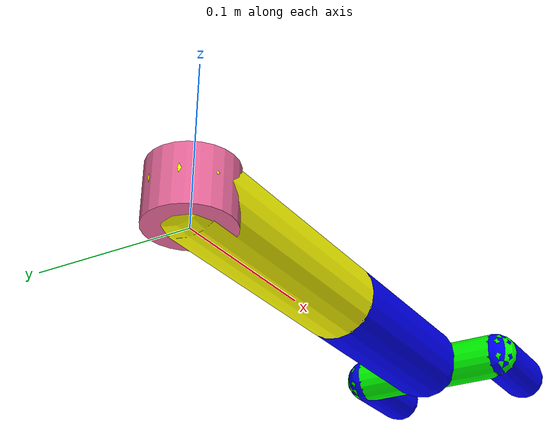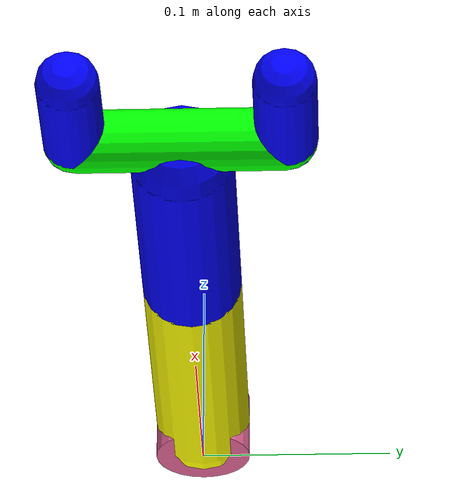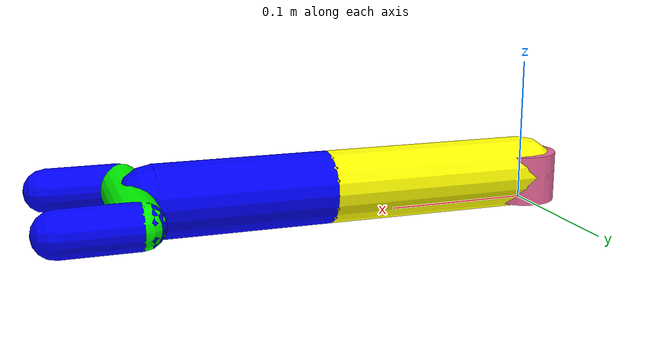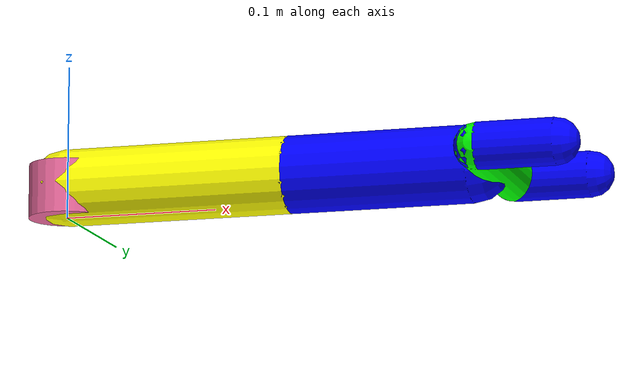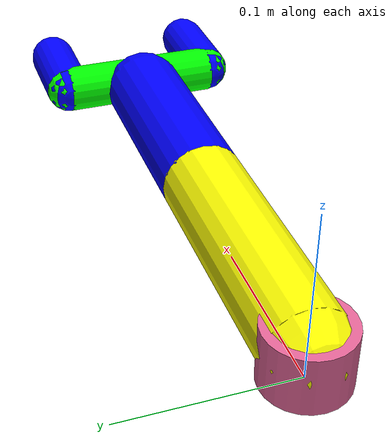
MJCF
<mujoco model="reacher">
	<compiler angle="radian" inertiafromgeom="true"/>
	<default>
		<joint armature="1" damping="1" limited="true"/>
		<geom contype="0" friction="1 0.1 0.1" rgba="1 0 0 1"/>
	</default>
	<option gravity="0 0 -9.81" integrator="RK4" timestep="0.01"/>
	<worldbody>
		<geom name="base_link" type="cylinder" conaffinity="0" contype="0" fromto="0 0 0 0 0 0.035" rgba="0.9 0.4 0.6 1" size=".025" />
		<body name="shoulder" pos="0 0 .02">
			<inertial pos="0 0 0" mass="2" diaginertia="1.66667 1.66667 1.66667"/>
			<geom name="shoulder_link" fromto="0 0 0 0.15 0 0" rgba="1 1 0 1" size=".025" type="capsule"/>
			<joint name="joint0" axis="0 0 1" limited="false" pos="0 0 0" type="hinge"/>
			<body name="elbow" pos="0.15 0 0">
				<inertial pos="0 0 0" mass="2" diaginertia="1.66667 1.66667 1.66667"/>
				<joint name="joint1" axis="0 0 1" limited="true" pos="0 0 0" range="-3.0 3.0" type="hinge"/>
				<geom name="elbow_link" fromto="0 0 0 0.12 0 0" rgba="0 0 1 1" size=".025" type="capsule"/>
				<body name="wrist" pos="0.135 0 0">
					<inertial pos="0 0 0" mass="1" diaginertia="1.66667 1.66667 1.66667"/>
					<!-- joint name="joint2" axis="0 0 1" limited="true" pos="0 0 0" range="-0.7854 0.7854" type="hinge"/ -->
				    <geom name="hand_link" type="capsule" fromto="0 -0.05 0. 0.0 +0.05 0" size="0.015" rgba="0 1 0 1" contype="1" conaffinity="1" />
					<geom name="hand_center" contype="0" pos="0 0 0" rgba="0 1 0 1" size=".012" type="sphere" />
				  <body name="fings" pos="0 0 0">
				    <geom name="fing_l" type="capsule" fromto="0 -0.05 0. 0.05 -0.05 0" size="0.015" rgba="0 0 1 1" contype="1" conaffinity="1" />
				    <geom name="fing_r" type="capsule" fromto="0 +0.05 0. 0.05 +0.05 0." size="0.015" rgba="0 0 1 1" contype="1" conaffinity="1" />
					<geom name="tip_l" type="sphere" pos="0.05 -0.05 0." size="0.012" rgba="0 0 1 1" />
					<geom name="tip_r" type="sphere" pos="0.05 0.05 0." size="0.012" rgba="0 0 1 1" />
				  </body>
				</body>
			</body>
		</body>
	</worldbody>
	<actuator>
		<motor ctrllimited="true" ctrlrange="-1.0 1.0" gear="200.0" joint="joint0"/>
		<motor ctrllimited="true" ctrlrange="-1.0 1.0" gear="200.0" joint="joint1"/>
	</actuator>
</mujoco>
